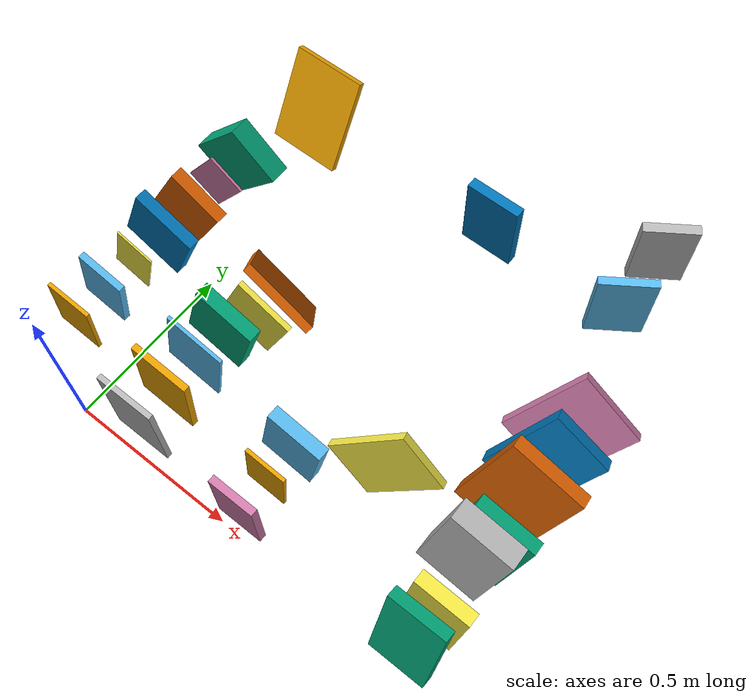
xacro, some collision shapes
<?xml version="1.0" ?>
<robot name="books_demo"
       xmlns:controller="http://playerstage.sourceforge.net/gazebo/xmlschema/#controller"
       xmlns:interface="http://playerstage.sourceforge.net/gazebo/xmlschema/#interface"
       xmlns:sensor="http://playerstage.sourceforge.net/gazebo/xmlschema/#sensor"
       xmlns:xacro="http://www.ros.org/wiki/xacro">

  <!--
       ROS URDF model of several books.
       Origin and center of mass are at the center of the mesh.

       (C) 2019 fnh, hendrich@informatik.uni-hamburg.de
  -->
  <!-- main body with Collada mesh for both visual and collision -->

  <xacro:include filename="$(find tams_books_world)/urdf/book_cube.xacro" />

  <xacro:book_cube
      name="book_bobh"
      weight="0.210"
      mesh="book-bobh.dae"
      xsize="0.126"
      ysize="0.010"
      zsize="0.184"
  />

  <xacro:book_cube
      name="book_dyson"
      weight="0.228"
      mesh="book-dyson.dae"
      xsize="0.130"
      ysize="0.018"
      zsize="0.198"
  />

  <xacro:book_cube
      name="book_goedel"
      weight="1.100"
      mesh="book-goedel.dae"
      xsize="0.162"
      ysize="0.055"
      zsize="0.234"
  />

  <xacro:book_cube
      name="book_hamburg"
      weight="0.062"
      mesh="book-hamburg.dae"
      xsize="0.108"
      ysize="0.005"
      zsize="0.185"
  />

  <xacro:book_cube
      name="book_haykin"
      weight="1.316"
      mesh="book-haykin.dae"
      xsize="0.177"
      ysize="0.032"
      zsize="0.230"
  />

  <xacro:book_cube
      name="book_javaff"
      weight="0.906"
      mesh="book-javaff.dae"
      xsize="0.157"
      ysize="0.034"
      zsize="0.235"
  />

  <xacro:book_cube
      name="book_jekyll"
      weight="0.056"
      mesh="book-jekyll.dae"
      xsize="0.110"
      ysize="0.007"
      zsize="0.180"
  />

  <xacro:book_cube
      name="book_knuth_40"
      weight="0.400"
      mesh="book-knuth-40.dae"
      xsize="0.161"
      ysize="0.014"
      zsize="0.240"
  />

  <xacro:book_cube
      name="book_knuth_41"
      weight="0.498"
      mesh="book-knuth-41.dae"
      xsize="0.161"
      ysize="0.017"
      zsize="0.240"
  />

  <xacro:book_cube
      name="book_knuth_42"
      weight="0.274"
      mesh="book-knuth-42.dae"
      xsize="0.161"
      ysize="0.009"
      zsize="0.240"
  />

  <xacro:book_cube
      name="book_knuth"
      weight="1.080"
      mesh="book-knuth.dae"
      xsize="0.167"
      ysize="0.037"
      zsize="0.240"
  />

  <xacro:book_cube
      name="book_lagemann"
      weight="0.554"
      mesh="book-lagemann.dae"
      xsize="0.165"
      ysize="0.015"
      zsize="0.242"
  />

  <xacro:book_cube
      name="book_lakoff"
      weight="0.977"
      mesh="book-lakoff.dae"
      xsize="0.168"
      ysize="0.035"
      zsize="0.240"
  />

  <xacro:book_cube
      name="book_lskm"
      weight="0.978"
      mesh="book-lskm.dae"
      xsize="0.217"
      ysize="0.024"
      zsize="0.250"
  />

  <xacro:book_cube
      name="book_mead_conway"
      weight="0.972"
      mesh="book-mead-conway.dae"
      xsize="0.200"
      ysize="0.025"
      zsize="0.243"
  />

  <xacro:book_cube
      name="book_memory"
      weight="0.666"
      mesh="book-memory.dae"
      xsize="0.148"
      ysize="0.028"
      zsize="0.227"
  />

  <xacro:book_cube
      name="book_minsky"
      weight="0.764"
      mesh="book-minsky.dae"
      xsize="0.215"
      ysize="0.019"
      zsize="0.280"
  />

  <xacro:book_cube
      name="book_moeller"
      weight="0.592"
      mesh="book-moeller.dae"
      xsize="0.153"
      ysize="0.023"
      zsize="0.236"
  />

  <xacro:book_cube
      name="book_pdp1"
      weight="0.897"
      mesh="book-pdp1.dae"
      xsize="0.150"
      ysize="0.032"
      zsize="0.228"
  />

  <xacro:book_cube
      name="book_pdp2"
      weight="1.008"
      mesh="book-pdp2.dae"
      xsize="0.150"
      ysize="0.036"
      zsize="0.228"
  />

  <xacro:book_cube
      name="book_rojas"
      weight="0.666"
      mesh="book-rojas.dae"
      xsize="0.155"
      ysize="0.030"
      zsize="0.232"
  />

  <xacro:book_cube
      name="book_schmidt"
      weight="1.764"
      mesh="book-schmidt.dae"
      xsize="0.200"
      ysize="0.038"
      zsize="0.275"
  />

  <xacro:book_cube
      name="book_selfish"
      weight="0.246"
      mesh="book-selfish.dae"
      xsize="0.130"
      ysize="0.020"
      zsize="0.196"
  />

  <xacro:book_cube
      name="book_voynich"
      weight="2.0"
      mesh="voynich/book-voynich.dae"
      xsize="0.160"
      ysize="0.057"
      zsize="0.230"
  />

  <xacro:book_cube
      name="book_watson"
      weight="0.114"
      mesh="book-watson.dae"
      xsize="0.115"
      ysize="0.010"
      zsize="0.190"
  />

  <xacro:book_cube
      name="book_wiering"
      weight="0.964"
      mesh="book-wiering.dae"
      xsize="0.155"
      ysize="0.035"
      zsize="0.235"
  />

  <xacro:book_cube
      name="book_winograd"
      weight="0.777"
      mesh="book-winograd.dae"
      xsize="0.168"
      ysize="0.037"
      zsize="0.240"
  />

  <xacro:book_cube
      name="book_zuse"
      weight="0.764"
      mesh="book-zuse.dae"
      xsize="0.172"
      ysize="0.021"
      zsize="0.247"
  />

  <link name="world" />

  <joint name="world_bobh_joint" type="floating">
     <parent link="world" />
     <child  link="book_bobh_link" />
     <origin xyz="0 0.1 0.4" rpy="0 0.1 0" />
  </joint>

  <joint name="world_dyson_joint" type="floating">
     <parent link="world" />
     <child  link="book_dyson_link" />
     <origin xyz="0 0.2 0.4" rpy="0 0.2 0" />
  </joint>

  <joint name="world_hamburg_joint" type="floating">
     <parent link="world" />
     <child  link="book_hamburg_link" />
     <origin xyz="0 0.3 0.4" rpy="0 0.3 0" />
  </joint>

  <joint name="world_haykin_joint" type="floating">
     <parent link="world" />
     <child  link="book_haykin_link" />
     <origin xyz="0 0.4 0.4" rpy="0 0.4 0" />
  </joint>

  <joint name="world_javaff_joint" type="floating">
     <parent link="world" />
     <child  link="book_javaff_link" />
     <origin xyz="0 0.5 0.4" rpy="0 0.5 0" />
  </joint>

  <joint name="world_jekyll_joint" type="floating">
     <parent link="world" />
     <child  link="book_jekyll_link" />
     <origin xyz="0 0.6 0.4" rpy="0 0.6 0" />
  </joint>

  <joint name="world_goedel_joint" type="floating">
     <parent link="world" />
     <child  link="book_goedel_link" />
     <origin xyz="0 0.7 0.4" rpy="0 0.7 0" />
  </joint>

  <joint name="world_knuth_40_joint" type="floating">
     <parent link="world" />
     <child  link="book_knuth_40_link" />
     <origin xyz="0.3 0 0.4" rpy="0.0 0 0" />
  </joint>

  <joint name="world_knuth_41_joint" type="floating">
     <parent link="world" />
     <child  link="book_knuth_41_link" />
     <origin xyz="0.3 0.1 0.4" rpy="0 0.1 0" />
  </joint>

  <joint name="world_knuth_42_joint" type="floating">
     <parent link="world" />
     <child  link="book_knuth_42_link" />
     <origin xyz="0.3 0.2 0.4" rpy="0 0.2 0" />
  </joint>

  <joint name="world_knuth_joint" type="floating">
     <parent link="world" />
     <child  link="book_knuth_link" />
     <origin xyz="0.3 0.3 0.4" rpy="0 0.3 0" />
  </joint>

  <joint name="world_lagemann_joint" type="floating">
     <parent link="world" />
     <child  link="book_lagemann_link" />
     <origin xyz="0.3 0.4 0.3" rpy="0 0.4 0" />
  </joint>

  <joint name="world_lskm_joint" type="floating">
     <parent link="world" />
     <child  link="book_lskm_link" />
     <origin xyz="0.3 0.5 0.3" rpy="0.5 0.5 0" />
  </joint>

  <joint name="world_memory_joint" type="floating">
     <parent link="world" />
     <child  link="book_memory_link" />
     <origin xyz="1 1.2 0.3" rpy="0 0 0.6" />
  </joint>

  <joint name="world_moeller_joint" type="floating">
     <parent link="world" />
     <child  link="book_moeller_link" />
     <origin xyz="1 1 0.3" rpy="0 0 0.6" />
  </joint>

  <joint name="world_minsky_joint" type="floating">
     <parent link="world" />
     <child  link="book_minsky_link" />
     <origin xyz="0 1 0.3" rpy="-0.5 0 0" />
  </joint>

  <joint name="world_rojas_joint" type="floating">
     <parent link="world" />
     <child  link="book_rojas_link" />
     <origin xyz="0.6 1 0.3" rpy="0.0 0 0" />
  </joint>

  <joint name="world_selfish_joint" type="floating">
     <parent link="world" />
     <child  link="book_selfish_link" />
     <origin xyz="0.6 0 0.3" rpy="0.0 0 0" />
  </joint>

  <joint name="world_watson_joint" type="floating">
     <parent link="world" />
     <child  link="book_watson_link" />
     <origin xyz="0.6 0.1 0.3" rpy="0 0.1 0" />
  </joint>

  <joint name="world_wiering_joint" type="floating">
     <parent link="world" />
     <child  link="book_wiering_link" />
     <origin xyz="0.6 0.2 0.3" rpy="0 0.2 0" />
  </joint>

  <joint name="world_zuse_joint" type="floating">
     <parent link="world" />
     <child  link="book_zuse_link" />
     <origin xyz="0.8 0.3 0.3" rpy="-0.3 0.8 0" />
  </joint>

  <!-- newcomers -->

  <joint name="world_pdp1_joint" type="floating">
     <parent link="world" />
     <child  link="book_pdp1_link" />
     <origin xyz="1.1 0.0 0.4" rpy="-0.3 0.0 0" />
  </joint>

  <joint name="world_pdp2_joint" type="floating">
     <parent link="world" />
     <child  link="book_pdp2_link" />
     <origin xyz="1.1 0.1 0.3" rpy="-0.1 0.1 0" />
  </joint>

  <joint name="world_voynich_joint" type="floating">
     <parent link="world" />
     <child  link="book_voynich_link" />
     <origin xyz="1.1 0.2 0.5" rpy="-0.2 0.2 0" />
  </joint>

  <joint name="world_winograd_joint" type="floating">
     <parent link="world" />
     <child  link="book_winograd_link" />
     <origin xyz="1.1 0.3 0.3" rpy="-0.2 0.2 0" />
  </joint>

  <joint name="world_schmidt_joint" type="floating">
     <parent link="world" />
     <child  link="book_schmidt_link" />
     <origin xyz="1.1 0.4 0.4" rpy="-0.3 0.3 0" />
  </joint>

  <joint name="world_lakoff_joint" type="floating">
     <parent link="world" />
     <child  link="book_lakoff_link" />
     <origin xyz="1.1 0.5 0.4" rpy="-0.5 0.5 0" />
  </joint>

  <joint name="world_mead_conway_joint" type="floating">
     <parent link="world" />
     <child  link="book_mead_conway_link" />
     <origin xyz="1.1 0.6 0.4" rpy="-0.6 0.6 0" />
  </joint>

</robot>

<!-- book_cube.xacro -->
<robot name="book_cube"
       xmlns:controller="http://playerstage.sourceforge.net/gazebo/xmlschema/#controller"
       xmlns:interface="http://playerstage.sourceforge.net/gazebo/xmlschema/#interface"
       xmlns:sensor="http://playerstage.sourceforge.net/gazebo/xmlschema/#sensor"
       xmlns:xacro="http://www.ros.org/wiki/xacro">
  <!--
       basic ROS xacro macro for a "book": a cube with textures.
       Origin and center of mass are at the center of the mesh.

       (C) 2019 fnh, hendrich@informatik.uni-hamburg.de
  -->

<xacro:macro name="book_cube" params="name weight mesh xsize ysize zsize">

  <!-- main body with Collada mesh for both visual and collision -->
  <link name="${name}_link">
    <inertial>
      <mass value="${weight}"/>
      <origin rpy="0 0 0" xyz="0 0 0"/>
      <inertia ixx="${weight/12*(ysize*ysize+zsize*zsize)}"
               iyy="${weight/12*(xsize*xsize+zsize*zsize)}"
               izz="${weight/12*(xsize*xsize+ysize*ysize)}"
               ixy="0" ixz="0" iyz="0" />
    </inertial>
    <collision>
      <origin rpy="0 0 0" xyz="0 0 0"/>
      <geometry>
        <box size="${xsize} ${ysize} ${zsize}" rpy="0 0 0" />
      </geometry>
    </collision>
    <visual>
      <origin rpy="0 0 0" xyz="0 0 0"/>
      <geometry>
        <mesh filename="package://tams_books_world/meshes/${mesh}" scale="${0.5*xsize} ${0.5*ysize} ${0.5*zsize}" />
      </geometry>
    </visual>
  </link>
  <gazebo reference="${name}_link">
    <!-- material/texture definition for Gazebo -->
    <turnGravityOff>false</turnGravityOff>
    <selfCollide>true</selfCollide>
    <mu1>1</mu1>
    <mu2>1</mu2>
    <kp>10000000.0</kp>
    <kd>10.0</kd>
  </gazebo>
</xacro:macro>

</robot>
